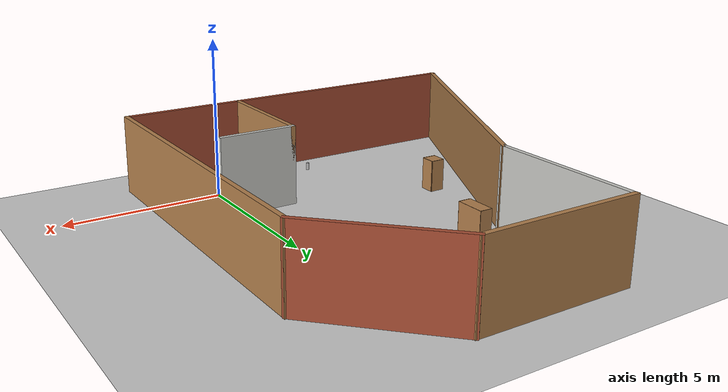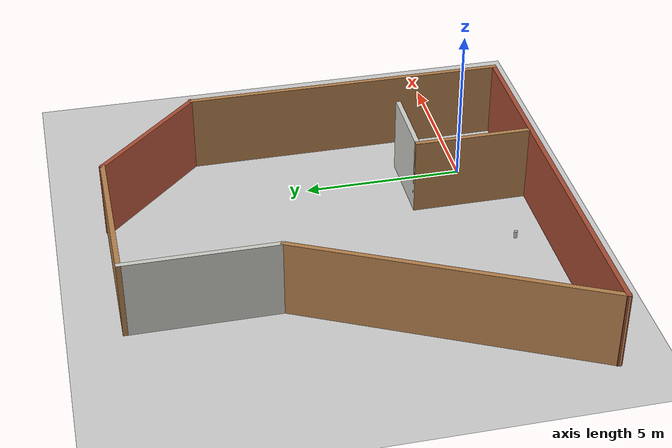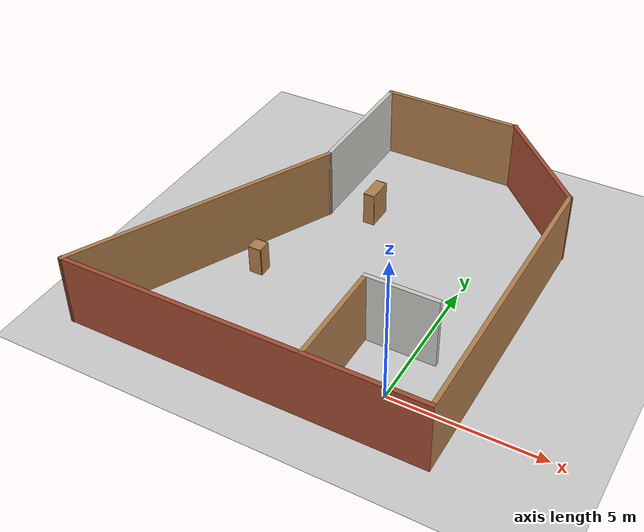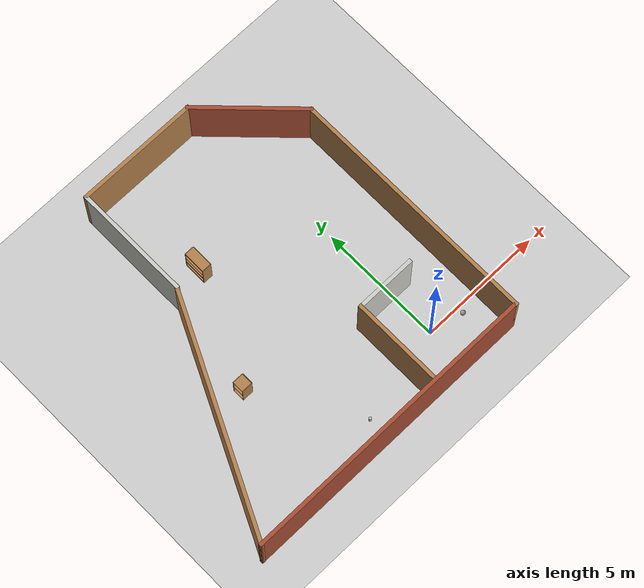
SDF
<sdf version="1.4">
 <world name="default">
  <light name="sun" type="directional">
   <pose>0 0 10 0 -0 0</pose>
   <diffuse>0.8 0.8 0.8 1</diffuse>
   <specular>0.2 0.2 0.2 1</specular>
   <attenuation>
    <range>1000</range>
    <constant>0.9</constant>
    <linear>0.01</linear>
    <quadratic>0.001</quadratic>
   </attenuation>
   <direction>-0.5 0.1 -0.9</direction>
  </light>
  <model name="ground_plane">
   <static>1</static>
   <link name="link">
    <collision name="collision">
     <geometry><plane><normal>0 0 1</normal><size>100 100</size></plane></geometry>
     <surface>
      <contact><collide_bitmask>65535</collide_bitmask></contact>
      <friction><ode><mu>100</mu><mu2>50</mu2></ode></friction>
     </surface>
    </collision>
    <visual name="visual">
     <cast_shadows>0</cast_shadows>
     <geometry><plane><normal>0 0 1</normal><size>100 100</size></plane></geometry>
     <material>
      <script><uri>file://media/materials/scripts/gazebo.material</uri><name>Gazebo/Grey</name></script>
     </material>
    </visual>
   </link>
  </model>
  <gravity>0 0 -9.8</gravity>
  <magnetic_field>6e-06 2.3e-05 -4.2e-05</magnetic_field>
  <atmosphere type="adiabatic"/>
  <physics type="ode">
   <real_time_update_rate>1000.0</real_time_update_rate>
   <max_step_size>0.001</max_step_size>
   <real_time_factor>1</real_time_factor>
   <ode>
    <solver>
     <type>quick</type>
     <iters>150</iters>
     <precon_iters>0</precon_iters>
     <sor>1.400000</sor>
     <use_dynamic_moi_rescaling>1</use_dynamic_moi_rescaling>
    </solver>
    <constraints>
     <cfm>0.00001</cfm>
     <erp>0.2</erp>
     <contact_max_correcting_vel>2000.000000</contact_max_correcting_vel>
     <contact_surface_layer>0.01000</contact_surface_layer>
    </constraints>
   </ode>
  </physics>
  <scene><ambient>0.4 0.4 0.4 1</ambient><background>0.7 0.7 0.7 1</background><shadows>1</shadows></scene>
  <audio><device>default</device></audio>
  <spherical_coordinates>
   <surface_model>EARTH_WGS84</surface_model>
   <latitude_deg>0</latitude_deg>
   <longitude_deg>0</longitude_deg>
   <elevation>0</elevation>
   <heading_deg>0</heading_deg>
  </spherical_coordinates>
  <model name="small_world2">
   <pose>-3.82878 4.8076 0 0 -0 0</pose>
   <link name="Wall_10">
    <collision name="Wall_10_Collision">
     <geometry><box><size>3.75 0.15 2.5</size></box></geometry>
     <pose>0 0 1.25 0 -0 0</pose>
    </collision>
    <visual name="Wall_10_Visual">
     <pose>0 0 1.25 0 -0 0</pose>
     <geometry><box><size>3.75 0.15 2.5</size></box></geometry>
     <material>
      <script><uri>file://media/materials/scripts/gazebo.material</uri><name>Gazebo/Wood</name></script>
      <ambient>1 1 1 1</ambient>
     </material>
     <meta><layer>0</layer></meta>
    </visual>
    <pose>2.16307 -4.75351 0 0 -0 1.5708</pose>
   </link>
   <link name="Wall_11">
    <collision name="Wall_11_Collision">
     <geometry><box><size>2.5 0.15 2.5</size></box></geometry>
     <pose>0 0 1.25 0 -0 0</pose>
    </collision>
    <visual name="Wall_11_Visual">
     <pose>0 0 1.25 0 -0 0</pose>
     <geometry><box><size>2.5 0.15 2.5</size></box></geometry>
     <material>
      <script><uri>file://media/materials/scripts/gazebo.material</uri><name>Gazebo/CeilingTiled</name></script>
      <ambient>1 1 1 1</ambient>
     </material>
     <meta><layer>0</layer></meta>
    </visual>
    <pose>3.33807 -2.95351 0 0 -0 0</pose>
   </link>
   <link name="Wall_13">
    <collision name="Wall_13_Collision">
     <geometry><box><size>4.5 0.15 2.5</size></box></geometry>
     <pose>0 0 1.25 0 -0 0</pose>
    </collision>
    <visual name="Wall_13_Visual">
     <pose>0 0 1.25 0 -0 0</pose>
     <geometry><box><size>4.5 0.15 2.5</size></box></geometry>
     <material>
      <script><uri>file://media/materials/scripts/gazebo.material</uri><name>Gazebo/Bricks</name></script>
      <ambient>1 1 1 1</ambient>
     </material>
     <meta><layer>0</layer></meta>
    </visual>
    <pose>4.50914 5.0471 0 0 -0 2.35619</pose>
   </link>
   <link name="Wall_14">
    <collision name="Wall_14_Collision">
     <geometry><box><size>5 0.15 2.5</size></box></geometry>
     <pose>0 0 1.25 0 -0 0</pose>
    </collision>
    <visual name="Wall_14_Visual">
     <pose>0 0 1.25 0 -0 0</pose>
     <geometry><box><size>5 0.15 2.5</size></box></geometry>
     <material>
      <script><uri>file://media/materials/scripts/gazebo.material</uri><name>Gazebo/Wood</name></script>
      <ambient>1 1 1 1</ambient>
     </material>
     <meta><layer>0</layer></meta>
    </visual>
    <pose>0.546182 6.58505 0 0 -0 3.14159</pose>
   </link>
   <link name="Wall_15">
    <collision name="Wall_15_Collision">
     <geometry><box><size>4.75 0.15 2.5</size></box></geometry>
     <pose>0 0 1.25 0 -0 0</pose>
    </collision>
    <visual name="Wall_15_Visual">
     <pose>0 0 1.25 0 -0 0</pose>
     <geometry><box><size>4.75 0.15 2.5</size></box></geometry>
     <material>
      <script><uri>file://media/materials/scripts/gazebo.material</uri><name>Gazebo/CeilingTiled</name></script>
      <ambient>1 1 1 1</ambient>
     </material>
     <meta><layer>0</layer></meta>
    </visual>
    <pose>-1.87882 4.28505 0 0 -0 -1.5708</pose>
   </link>
   <link name="Wall_16">
    <collision name="Wall_16_Collision">
     <geometry><box><size>9.68778 0.15 2.5</size></box></geometry>
     <pose>0 0 1.25 0 -0 0</pose>
    </collision>
    <visual name="Wall_16_Visual">
     <pose>0 0 1.25 0 -0 0</pose>
     <geometry><box><size>9.68778 0.15 2.5</size></box></geometry>
     <material>
      <script><uri>file://media/materials/scripts/gazebo.material</uri><name>Gazebo/Wood</name></script>
      <ambient>1 1 1 1</ambient>
     </material>
     <meta><layer>0</layer></meta>
    </visual>
    <pose>-3.96586 -2.3029 0 0 -0 -2.02377</pose>
   </link>
   <link name="Wall_2">
    <collision name="Wall_2_Collision">
     <geometry><box><size>12.25 0.15 2.5</size></box></geometry>
     <pose>0 0 1.25 0 -0 0</pose>
    </collision>
    <visual name="Wall_2_Visual">
     <pose>0 0 1.25 0 -0 0</pose>
     <geometry><box><size>12.25 0.15 2.5</size></box></geometry>
     <material>
      <script><uri>file://media/materials/scripts/gazebo.material</uri><name>Gazebo/Bricks</name></script>
      <ambient>1 1 1 1</ambient>
     </material>
     <meta><layer>0</layer></meta>
    </visual>
    <pose>-0.002904 -6.59086 0 0 -0 0</pose>
   </link>
   <link name="Wall_8">
    <collision name="Wall_8_Collision">
     <geometry><box><size>10.25 0.15 2.5</size></box></geometry>
     <pose>0 0 1.25 0 -0 0</pose>
    </collision>
    <visual name="Wall_8_Visual">
     <pose>0 0 1.25 0 -0 0</pose>
     <geometry><box><size>10.25 0.15 2.5</size></box></geometry>
     <material>
      <script><uri>file://media/materials/scripts/gazebo.material</uri><name>Gazebo/Wood</name></script>
      <ambient>1 1 1 1</ambient>
     </material>
     <meta><layer>0</layer></meta>
    </visual>
    <pose>6.0471 -1.54086 0 0 -0 1.5708</pose>
   </link>
   <static>1</static>
  </model>
  <model name="cabinet">
   <static>1</static>
   <link name="cabinet_bottom_plate">
    <inertial>
     <pose>0 0 -1 0 -0 0</pose>
     <inertia><ixx>2.05</ixx><ixy>0</ixy><ixz>0</ixz><iyy>2.05</iyy><iyz>0</iyz><izz>2.05</izz></inertia>
     <mass>25</mass>
    </inertial>
    <collision name="cabinet_bottom_plate_geom">
     <pose>0 0 0.01 0 -0 0</pose>
     <geometry><box><size>0.45 0.45 0.02</size></box></geometry>
    </collision>
    <visual name="cabinet_bottom_plate_geom_visual">
     <pose>0 0 0.01 0 -0 0</pose>
     <geometry><box><size>0.45 0.45 0.02</size></box></geometry>
     <material>
      <script><uri>file://media/materials/scripts/gazebo.material</uri><name>Gazebo/Wood</name></script>
     </material>
    </visual>
    <collision name="cabinet_bottom_plate_geom_cabinet_back_plate">
     <pose>0.235 0 0.51 0 -0 0</pose>
     <geometry><box><size>0.02 0.45 1.02</size></box></geometry>
    </collision>
    <visual name="cabinet_bottom_plate_geom_cabinet_back_plate_visual">
     <pose>0.235 0 0.51 0 -0 0</pose>
     <geometry><box><size>0.02 0.45 1.02</size></box></geometry>
     <material>
      <script><uri>file://media/materials/scripts/gazebo.material</uri><name>Gazebo/Wood</name></script>
     </material>
    </visual>
    <collision name="cabinet_bottom_plate_geom_cabinet_left_plate">
     <pose>0 0.235 0.51 0 -0 0</pose>
     <geometry><box><size>0.45 0.02 1.02</size></box></geometry>
    </collision>
    <visual name="cabinet_bottom_plate_geom_cabinet_left_plate_visual">
     <pose>0 0.235 0.51 0 -0 0</pose>
     <geometry><box><size>0.45 0.02 1.02</size></box></geometry>
     <material>
      <script><uri>file://media/materials/scripts/gazebo.material</uri><name>Gazebo/Wood</name></script>
     </material>
    </visual>
    <collision name="cabinet_bottom_plate_geom_cabinet_middle_plate">
     <pose>0 0 0.51 0 -0 0</pose>
     <geometry><box><size>0.45 0.45 0.02</size></box></geometry>
    </collision>
    <visual name="cabinet_bottom_plate_geom_cabinet_middle_plate_visual">
     <pose>0 0 0.51 0 -0 0</pose>
     <geometry><box><size>0.45 0.45 0.02</size></box></geometry>
     <material>
      <script><uri>file://media/materials/scripts/gazebo.material</uri><name>Gazebo/Wood</name></script>
     </material>
    </visual>
    <collision name="cabinet_bottom_plate_geom_cabinet_right_plate">
     <pose>0 -0.235 0.51 0 -0 0</pose>
     <geometry><box><size>0.45 0.02 1.02</size></box></geometry>
    </collision>
    <visual name="cabinet_bottom_plate_geom_cabinet_right_plate_visual">
     <pose>0 -0.235 0.51 0 -0 0</pose>
     <geometry><box><size>0.45 0.02 1.02</size></box></geometry>
     <material>
      <script><uri>file://media/materials/scripts/gazebo.material</uri><name>Gazebo/Wood</name></script>
     </material>
    </visual>
    <collision name="cabinet_bottom_plate_geom_cabinet_top_plate">
     <pose>0 0 1.01 0 -0 0</pose>
     <geometry><box><size>0.45 0.45 0.02</size></box></geometry>
    </collision>
    <visual name="cabinet_bottom_plate_geom_cabinet_top_plate_visual">
     <pose>0 0 1.01 0 -0 0</pose>
     <geometry><box><size>0.45 0.45 0.02</size></box></geometry>
     <material>
      <script><uri>file://media/materials/scripts/gazebo.material</uri><name>Gazebo/Wood</name></script>
     </material>
    </visual>
   </link>
   <pose>-6.20008 3.05457 0 0 -0 0</pose>
  </model>
  <model name="my_ball">
   <link name="link_0">
    <inertial>
     <mass>1</mass>
     <inertia><ixx>0.1</ixx><ixy>0</ixy><ixz>0</ixz><iyy>0.1</iyy><iyz>0</iyz><izz>0.1</izz></inertia>
    </inertial>
    <visual name="visual">
     <geometry><sphere><radius>0.1</radius></sphere></geometry>
     <material>
      <lighting>1</lighting>
      <script><uri>file://media/materials/scripts/gazebo.material</uri><name>Gazebo/Grey</name></script>
      <shader type="vertex"><normal_map>__default__</normal_map></shader>
      <ambient>1 1 1 1</ambient>
      <diffuse>1 1 1 1</diffuse>
      <specular>1 1 1 1</specular>
      <emissive>1 1 1 1</emissive>
     </material>
    </visual>
    <collision name="collision">
     <geometry><sphere><radius>0.1</radius></sphere></geometry>
     <surface>
      <friction>
       <ode><mu>1</mu><mu2>1</mu2><fdir1>0 0 0</fdir1><slip1>0</slip1><slip2>0</slip2></ode>
       <torsional>
        <coefficient>1</coefficient>
        <patch_radius>0</patch_radius>
        <surface_radius>0</surface_radius>
        <use_patch_radius>1</use_patch_radius>
        <ode><slip>0</slip></ode>
       </torsional>
      </friction>
      <bounce><restitution_coefficient>0</restitution_coefficient><threshold>1e+06</threshold></bounce>
      <contact>
       <collide_without_contact>0</collide_without_contact>
       <collide_without_contact_bitmask>1</collide_without_contact_bitmask>
       <collide_bitmask>1</collide_bitmask>
       <ode>
        <soft_cfm>0</soft_cfm>
        <soft_erp>0.2</soft_erp>
        <kp>1e+13</kp>
        <kd>1</kd>
        <max_vel>0.01</max_vel>
        <min_depth>0</min_depth>
       </ode>
       <bullet>
        <split_impulse>1</split_impulse>
        <split_impulse_penetration_threshold>-0.01</split_impulse_penetration_threshold>
        <soft_cfm>0</soft_cfm>
        <soft_erp>0.2</soft_erp>
        <kp>1e+13</kp>
        <kd>1</kd>
       </bullet>
      </contact>
     </surface>
    </collision>
   </link>
   <static>0</static>
   <pose>1.33653 -0.284343 0.1 0 -0 0</pose>
  </model>
  <model name="beer">
   <link name="link">
    <pose>0 0 0.115 0 -0 0</pose>
    <inertial>
     <mass>0.39</mass>
     <inertia><ixx>0.00058</ixx><ixy>0</ixy><ixz>0</ixz><iyy>0.00058</iyy><iyz>0</iyz><izz>0.00019</izz></inertia>
    </inertial>
    <collision name="collision">
     <geometry><cylinder><radius>0.055</radius><length>0.23</length></cylinder></geometry>
    </collision>
    <visual name="visual">
     <geometry><cylinder><radius>0.055</radius><length>0.23</length></cylinder></geometry>
     <material>
      <script>
       <uri>model://beer/materials/scripts</uri>
       <uri>model://beer/materials/textures</uri>
       <name>Beer/Diffuse</name>
      </script>
     </material>
    </visual>
   </link>
   <pose>-3.75245 -0.780893 -7e-06 -1e-06 -0 -3.8e-05</pose>
  </model>
  <model name="bookshelf">
   <static>1</static>
   <link name="link">
    <inertial><mass>1</mass></inertial>
    <collision name="back">
     <pose>0 0.005 0.6 0 -0 0</pose>
     <geometry><box><size>0.9 0.01 1.2</size></box></geometry>
    </collision>
    <visual name="visual1">
     <pose>0 0.005 0.6 0 -0 0</pose>
     <geometry><box><size>0.9 0.01 1.2</size></box></geometry>
     <material>
      <script><uri>file://media/materials/scripts/gazebo.material</uri><name>Gazebo/Wood</name></script>
     </material>
    </visual>
    <collision name="left_side">
     <pose>0.45 -0.195 0.6 0 -0 0</pose>
     <geometry><box><size>0.02 0.4 1.2</size></box></geometry>
    </collision>
    <visual name="visual2">
     <pose>0.45 -0.195 0.6 0 -0 0</pose>
     <geometry><box><size>0.02 0.4 1.2</size></box></geometry>
     <material>
      <script><uri>file://media/materials/scripts/gazebo.material</uri><name>Gazebo/Wood</name></script>
     </material>
    </visual>
    <collision name="right_side">
     <pose>-0.45 -0.195 0.6 0 -0 0</pose>
     <geometry><box><size>0.02 0.4 1.2</size></box></geometry>
    </collision>
    <visual name="visual3">
     <pose>-0.45 -0.195 0.6 0 -0 0</pose>
     <geometry><box><size>0.02 0.4 1.2</size></box></geometry>
     <material>
      <script><uri>file://media/materials/scripts/gazebo.material</uri><name>Gazebo/Wood</name></script>
     </material>
    </visual>
    <collision name="bottom">
     <pose>0 -0.195 0.03 0 -0 0</pose>
     <geometry><box><size>0.88 0.4 0.06</size></box></geometry>
    </collision>
    <visual name="visual4">
     <pose>0 -0.195 0.03 0 -0 0</pose>
     <geometry><box><size>0.88 0.4 0.06</size></box></geometry>
     <material>
      <script><uri>file://media/materials/scripts/gazebo.material</uri><name>Gazebo/Wood</name></script>
     </material>
    </visual>
    <collision name="top">
     <pose>0 -0.195 1.19 0 -0 0</pose>
     <geometry><box><size>0.88 0.4 0.02</size></box></geometry>
    </collision>
    <visual name="visual5">
     <pose>0 -0.195 1.19 0 -0 0</pose>
     <geometry><box><size>0.88 0.4 0.02</size></box></geometry>
     <material>
      <script><uri>file://media/materials/scripts/gazebo.material</uri><name>Gazebo/Wood</name></script>
     </material>
    </visual>
    <collision name="low_shelf">
     <pose>0 -0.195 0.43 0 -0 0</pose>
     <geometry><box><size>0.88 0.4 0.02</size></box></geometry>
    </collision>
    <visual name="visual6">
     <pose>0 -0.195 0.43 0 -0 0</pose>
     <geometry><box><size>0.88 0.4 0.02</size></box></geometry>
     <material>
      <script><uri>file://media/materials/scripts/gazebo.material</uri><name>Gazebo/Wood</name></script>
     </material>
    </visual>
    <collision name="high_shelf">
     <pose>0 -0.195 0.8 0 -0 0</pose>
     <geometry><box><size>0.88 0.4 0.02</size></box></geometry>
    </collision>
    <visual name="visual7">
     <pose>0 -0.195 0.8 0 -0 0</pose>
     <geometry><box><size>0.88 0.4 0.02</size></box></geometry>
     <material>
      <script><uri>file://media/materials/scripts/gazebo.material</uri><name>Gazebo/Wood</name></script>
     </material>
    </visual>
   </link>
   <pose>-4.03412 7.37761 0 0 0 -1.57556</pose>
  </model>
 </world>
</sdf>
